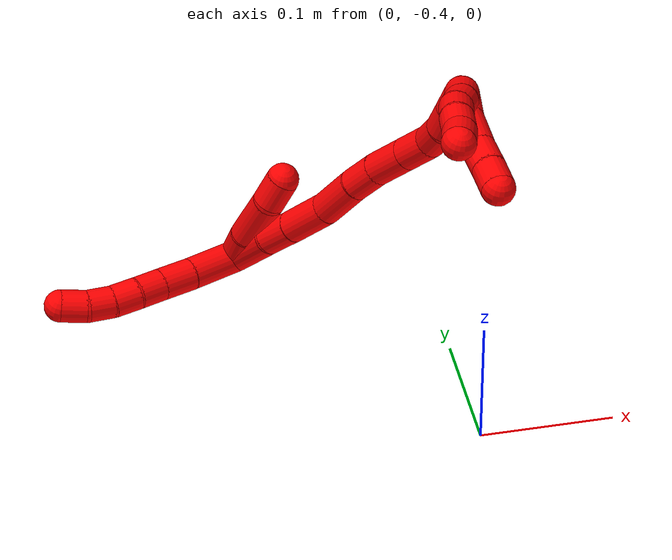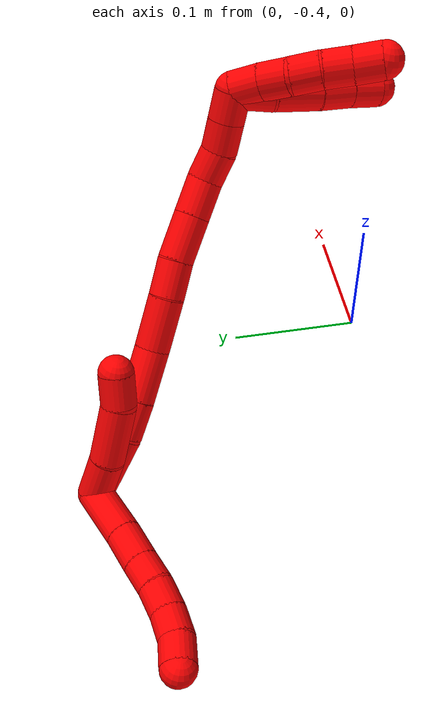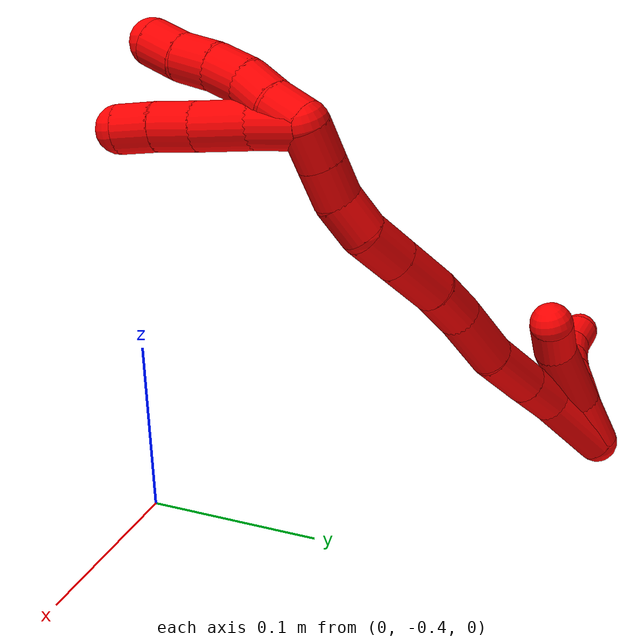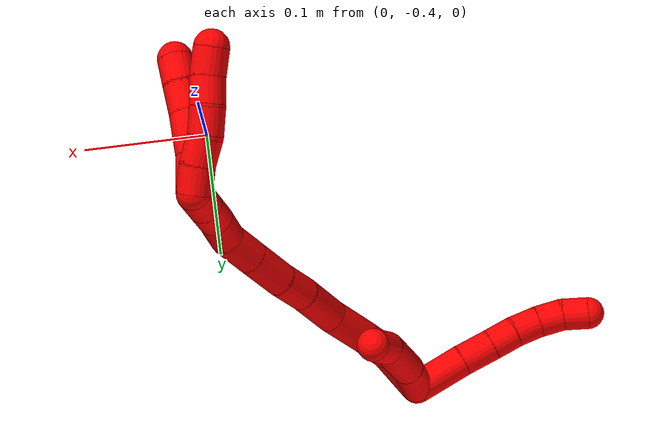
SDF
<sdf version="1.7">
 <world name="default">
  <model name="2">
   <static>0</static>
   <link name="2">
    <collision name="collision-cylinder-e_1_2_8">
     <pose>-0.01979 0.00657 0.000318 -1.52241 -1.24988 1.20432</pose>
     <geometry><cylinder><radius>0.0125</radius><length>0.041709</length></cylinder></geometry>
     <surface>
      <friction><ode><mu>1.16</mu><mu2>1.16</mu2><slip1>0</slip1><slip2>0</slip2></ode></friction>
      <contact><ode><kp>1e+06</kp><kd>1</kd><max_vel>0</max_vel><min_depth>0.001</min_depth></ode></contact>
     </surface>
    </collision>
    <visual name="visual-cylinder-e_1_2_8">
     <pose>-0.01979 0.00657 0.000318 -1.52241 -1.24988 1.20432</pose>
     <geometry><cylinder><radius>0.0125</radius><length>0.041709</length></cylinder></geometry>
     <material><ambient>1 0 0 1</ambient></material>
    </visual>
    <collision name="collision-cylinder-e_2_8_9">
     <pose>-0.052305 0.016653 0.000937 -1.4854 -1.30057 1.21919</pose>
     <geometry><cylinder><radius>0.0125</radius><length>0.026409</length></cylinder></geometry>
     <surface>
      <friction><ode><mu>1.16</mu><mu2>1.16</mu2><slip1>0</slip1><slip2>0</slip2></ode></friction>
      <contact><ode><kp>1e+06</kp><kd>1</kd><max_vel>0</max_vel><min_depth>0.001</min_depth></ode></contact>
     </surface>
    </collision>
    <visual name="visual-cylinder-e_2_8_9">
     <pose>-0.052305 0.016653 0.000937 -1.4854 -1.30057 1.21919</pose>
     <geometry><cylinder><radius>0.0125</radius><length>0.026409</length></cylinder></geometry>
     <material><ambient>1 0 0 1</ambient></material>
    </visual>
    <collision name="collision-cylinder-e_3_9_10">
     <pose>-0.074958 0.023096 0.001368 -1.52618 -1.28349 1.24097</pose>
     <geometry><cylinder><radius>0.0125</radius><length>0.020705</length></cylinder></geometry>
     <surface>
      <friction><ode><mu>1.16</mu><mu2>1.16</mu2><slip1>0</slip1><slip2>0</slip2></ode></friction>
      <contact><ode><kp>1e+06</kp><kd>1</kd><max_vel>0</max_vel><min_depth>0.001</min_depth></ode></contact>
     </surface>
    </collision>
    <visual name="visual-cylinder-e_3_9_10">
     <pose>-0.074958 0.023096 0.001368 -1.52618 -1.28349 1.24097</pose>
     <geometry><cylinder><radius>0.0125</radius><length>0.020705</length></cylinder></geometry>
     <material><ambient>1 0 0 1</ambient></material>
    </visual>
    <collision name="collision-cylinder-e_4_10_11">
     <pose>-0.094997 0.028136 0.002585 -1.09557 -1.34034 0.900712</pose>
     <geometry><cylinder><radius>0.0125</radius><length>0.02077</length></cylinder></geometry>
     <surface>
      <friction><ode><mu>1.16</mu><mu2>1.16</mu2><slip1>0</slip1><slip2>0</slip2></ode></friction>
      <contact><ode><kp>1e+06</kp><kd>1</kd><max_vel>0</max_vel><min_depth>0.001</min_depth></ode></contact>
     </surface>
    </collision>
    <visual name="visual-cylinder-e_4_10_11">
     <pose>-0.094997 0.028136 0.002585 -1.09557 -1.34034 0.900712</pose>
     <geometry><cylinder><radius>0.0125</radius><length>0.02077</length></cylinder></geometry>
     <material><ambient>1 0 0 1</ambient></material>
    </visual>
    <collision name="collision-cylinder-e_5_11_12">
     <pose>-0.115093 0.030878 0.004113 -0.960942 -1.49358 0.899004</pose>
     <geometry><cylinder><radius>0.0125</radius><length>0.020031</length></cylinder></geometry>
     <surface>
      <friction><ode><mu>1.16</mu><mu2>1.16</mu2><slip1>0</slip1><slip2>0</slip2></ode></friction>
      <contact><ode><kp>1e+06</kp><kd>1</kd><max_vel>0</max_vel><min_depth>0.001</min_depth></ode></contact>
     </surface>
    </collision>
    <visual name="visual-cylinder-e_5_11_12">
     <pose>-0.115093 0.030878 0.004113 -0.960942 -1.49358 0.899004</pose>
     <geometry><cylinder><radius>0.0125</radius><length>0.020031</length></cylinder></geometry>
     <material><ambient>1 0 0 1</ambient></material>
    </visual>
    <collision name="collision-cylinder-e_6_12_6">
     <pose>-0.135089 0.029649 0.004919 1.3777 -1.38339 -1.197</pose>
     <geometry><cylinder><radius>0.0125</radius><length>0.020376</length></cylinder></geometry>
     <surface>
      <friction><ode><mu>1.16</mu><mu2>1.16</mu2><slip1>0</slip1><slip2>0</slip2></ode></friction>
      <contact><ode><kp>1e+06</kp><kd>1</kd><max_vel>0</max_vel><min_depth>0.001</min_depth></ode></contact>
     </surface>
    </collision>
    <visual name="visual-cylinder-e_6_12_6">
     <pose>-0.135089 0.029649 0.004919 1.3777 -1.38339 -1.197</pose>
     <geometry><cylinder><radius>0.0125</radius><length>0.020376</length></cylinder></geometry>
     <material><ambient>1 0 0 1</ambient></material>
    </visual>
    <collision name="collision-cylinder-e_1_2_13">
     <pose>0.001088 0.002904 -0.015987 -2.96193 0.066844 -0.710852</pose>
     <geometry><cylinder><radius>0.0125</radius><length>0.032571</length></cylinder></geometry>
     <surface>
      <friction><ode><mu>1.16</mu><mu2>1.16</mu2><slip1>0</slip1><slip2>0</slip2></ode></friction>
      <contact><ode><kp>1e+06</kp><kd>1</kd><max_vel>0</max_vel><min_depth>0.001</min_depth></ode></contact>
     </surface>
    </collision>
    <visual name="visual-cylinder-e_1_2_13">
     <pose>0.001088 0.002904 -0.015987 -2.96193 0.066844 -0.710852</pose>
     <geometry><cylinder><radius>0.0125</radius><length>0.032571</length></cylinder></geometry>
     <material><ambient>1 0 0 1</ambient></material>
    </visual>
    <collision name="collision-cylinder-e_2_13_14">
     <pose>0.006772 0.008418 -0.053226 -3.01936 0.211455 -2.09551</pose>
     <geometry><cylinder><radius>0.0125</radius><length>0.043797</length></cylinder></geometry>
     <surface>
      <friction><ode><mu>1.16</mu><mu2>1.16</mu2><slip1>0</slip1><slip2>0</slip2></ode></friction>
      <contact><ode><kp>1e+06</kp><kd>1</kd><max_vel>0</max_vel><min_depth>0.001</min_depth></ode></contact>
     </surface>
    </collision>
    <visual name="visual-cylinder-e_2_13_14">
     <pose>0.006772 0.008418 -0.053226 -3.01936 0.211455 -2.09551</pose>
     <geometry><cylinder><radius>0.0125</radius><length>0.043797</length></cylinder></geometry>
     <material><ambient>1 0 0 1</ambient></material>
    </visual>
    <collision name="collision-cylinder-e_3_14_5">
     <pose>0.01555 0.009592 -0.085435 3.01128 0.361803 2.45625</pose>
     <geometry><cylinder><radius>0.0125</radius><length>0.023632</length></cylinder></geometry>
     <surface>
      <friction><ode><mu>1.16</mu><mu2>1.16</mu2><slip1>0</slip1><slip2>0</slip2></ode></friction>
      <contact><ode><kp>1e+06</kp><kd>1</kd><max_vel>0</max_vel><min_depth>0.001</min_depth></ode></contact>
     </surface>
    </collision>
    <visual name="visual-cylinder-e_3_14_5">
     <pose>0.01555 0.009592 -0.085435 3.01128 0.361803 2.45625</pose>
     <geometry><cylinder><radius>0.0125</radius><length>0.023632</length></cylinder></geometry>
     <material><ambient>1 0 0 1</ambient></material>
    </visual>
    <collision name="collision-cylinder-e_1_2_15">
     <pose>0.007318 0.009679 -0.020618 -2.70269 0.310896 -1.22495</pose>
     <geometry><cylinder><radius>0.0125</radius><length>0.047847</length></cylinder></geometry>
     <surface>
      <friction><ode><mu>1.16</mu><mu2>1.16</mu2><slip1>0</slip1><slip2>0</slip2></ode></friction>
      <contact><ode><kp>1e+06</kp><kd>1</kd><max_vel>0</max_vel><min_depth>0.001</min_depth></ode></contact>
     </surface>
    </collision>
    <visual name="visual-cylinder-e_1_2_15">
     <pose>0.007318 0.009679 -0.020618 -2.70269 0.310896 -1.22495</pose>
     <geometry><cylinder><radius>0.0125</radius><length>0.047847</length></cylinder></geometry>
     <material><ambient>1 0 0 1</ambient></material>
    </visual>
    <collision name="collision-cylinder-e_2_15_16">
     <pose>0.021 0.023814 -0.052417 -2.76231 0.486323 -1.82451</pose>
     <geometry><cylinder><radius>0.0125</radius><length>0.027231</length></cylinder></geometry>
     <surface>
      <friction><ode><mu>1.16</mu><mu2>1.16</mu2><slip1>0</slip1><slip2>0</slip2></ode></friction>
      <contact><ode><kp>1e+06</kp><kd>1</kd><max_vel>0</max_vel><min_depth>0.001</min_depth></ode></contact>
     </surface>
    </collision>
    <visual name="visual-cylinder-e_2_15_16">
     <pose>0.021 0.023814 -0.052417 -2.76231 0.486323 -1.82451</pose>
     <geometry><cylinder><radius>0.0125</radius><length>0.027231</length></cylinder></geometry>
     <material><ambient>1 0 0 1</ambient></material>
    </visual>
    <collision name="collision-cylinder-e_3_16_17">
     <pose>0.036597 0.033729 -0.079195 -2.80497 0.50956 -1.98543</pose>
     <geometry><cylinder><radius>0.0125</radius><length>0.037857</length></cylinder></geometry>
     <surface>
      <friction><ode><mu>1.16</mu><mu2>1.16</mu2><slip1>0</slip1><slip2>0</slip2></ode></friction>
      <contact><ode><kp>1e+06</kp><kd>1</kd><max_vel>0</max_vel><min_depth>0.001</min_depth></ode></contact>
     </surface>
    </collision>
    <visual name="visual-cylinder-e_3_16_17">
     <pose>0.036597 0.033729 -0.079195 -2.80497 0.50956 -1.98543</pose>
     <geometry><cylinder><radius>0.0125</radius><length>0.037857</length></cylinder></geometry>
     <material><ambient>1 0 0 1</ambient></material>
    </visual>
    <collision name="collision-cylinder-e_4_17_18">
     <pose>0.052661 0.043414 -0.11223 -2.90375 0.363696 -1.98913</pose>
     <geometry><cylinder><radius>0.0125</radius><length>0.0384</length></cylinder></geometry>
     <surface>
      <friction><ode><mu>1.16</mu><mu2>1.16</mu2><slip1>0</slip1><slip2>0</slip2></ode></friction>
      <contact><ode><kp>1e+06</kp><kd>1</kd><max_vel>0</max_vel><min_depth>0.001</min_depth></ode></contact>
     </surface>
    </collision>
    <visual name="visual-cylinder-e_4_17_18">
     <pose>0.052661 0.043414 -0.11223 -2.90375 0.363696 -1.98913</pose>
     <geometry><cylinder><radius>0.0125</radius><length>0.0384</length></cylinder></geometry>
     <material><ambient>1 0 0 1</ambient></material>
    </visual>
    <collision name="collision-cylinder-e_5_18_19">
     <pose>0.06531 0.050598 -0.141006 -2.88653 0.461001 -2.14141</pose>
     <geometry><cylinder><radius>0.0125</radius><length>0.026163</length></cylinder></geometry>
     <surface>
      <friction><ode><mu>1.16</mu><mu2>1.16</mu2><slip1>0</slip1><slip2>0</slip2></ode></friction>
      <contact><ode><kp>1e+06</kp><kd>1</kd><max_vel>0</max_vel><min_depth>0.001</min_depth></ode></contact>
     </surface>
    </collision>
    <visual name="visual-cylinder-e_5_18_19">
     <pose>0.06531 0.050598 -0.141006 -2.88653 0.461001 -2.14141</pose>
     <geometry><cylinder><radius>0.0125</radius><length>0.026163</length></cylinder></geometry>
     <material><ambient>1 0 0 1</ambient></material>
    </visual>
    <collision name="collision-cylinder-e_6_19_20">
     <pose>0.07818 0.058914 -0.165834 -2.76344 0.452124 -1.75365</pose>
     <geometry><cylinder><radius>0.0125</radius><length>0.032278</length></cylinder></geometry>
     <surface>
      <friction><ode><mu>1.16</mu><mu2>1.16</mu2><slip1>0</slip1><slip2>0</slip2></ode></friction>
      <contact><ode><kp>1e+06</kp><kd>1</kd><max_vel>0</max_vel><min_depth>0.001</min_depth></ode></contact>
     </surface>
    </collision>
    <visual name="visual-cylinder-e_6_19_20">
     <pose>0.07818 0.058914 -0.165834 -2.76344 0.452124 -1.75365</pose>
     <geometry><cylinder><radius>0.0125</radius><length>0.032278</length></cylinder></geometry>
     <material><ambient>1 0 0 1</ambient></material>
    </visual>
    <collision name="collision-cylinder-e_7_20_21">
     <pose>0.090955 0.068672 -0.190341 -2.76173 0.449683 -1.74358</pose>
     <geometry><cylinder><radius>0.0125</radius><length>0.02634</length></cylinder></geometry>
     <surface>
      <friction><ode><mu>1.16</mu><mu2>1.16</mu2><slip1>0</slip1><slip2>0</slip2></ode></friction>
      <contact><ode><kp>1e+06</kp><kd>1</kd><max_vel>0</max_vel><min_depth>0.001</min_depth></ode></contact>
     </surface>
    </collision>
    <visual name="visual-cylinder-e_7_20_21">
     <pose>0.090955 0.068672 -0.190341 -2.76173 0.449683 -1.74358</pose>
     <geometry><cylinder><radius>0.0125</radius><length>0.02634</length></cylinder></geometry>
     <material><ambient>1 0 0 1</ambient></material>
    </visual>
    <collision name="collision-cylinder-e_8_21_22">
     <pose>0.098223 0.076633 -0.211747 -2.81121 0.139577 -0.794079</pose>
     <geometry><cylinder><radius>0.0125</radius><length>0.022187</length></cylinder></geometry>
     <surface>
      <friction><ode><mu>1.16</mu><mu2>1.16</mu2><slip1>0</slip1><slip2>0</slip2></ode></friction>
      <contact><ode><kp>1e+06</kp><kd>1</kd><max_vel>0</max_vel><min_depth>0.001</min_depth></ode></contact>
     </surface>
    </collision>
    <visual name="visual-cylinder-e_8_21_22">
     <pose>0.098223 0.076633 -0.211747 -2.81121 0.139577 -0.794079</pose>
     <geometry><cylinder><radius>0.0125</radius><length>0.022187</length></cylinder></geometry>
     <material><ambient>1 0 0 1</ambient></material>
    </visual>
    <collision name="collision-cylinder-e_9_22_23">
     <pose>0.101034 0.081091 -0.232667 -3.05687 0.119405 -1.90795</pose>
     <geometry><cylinder><radius>0.0125</radius><length>0.021284</length></cylinder></geometry>
     <surface>
      <friction><ode><mu>1.16</mu><mu2>1.16</mu2><slip1>0</slip1><slip2>0</slip2></ode></friction>
      <contact><ode><kp>1e+06</kp><kd>1</kd><max_vel>0</max_vel><min_depth>0.001</min_depth></ode></contact>
     </surface>
    </collision>
    <visual name="visual-cylinder-e_9_22_23">
     <pose>0.101034 0.081091 -0.232667 -3.05687 0.119405 -1.90795</pose>
     <geometry><cylinder><radius>0.0125</radius><length>0.021284</length></cylinder></geometry>
     <material><ambient>1 0 0 1</ambient></material>
    </visual>
    <collision name="collision-cylinder-e_10_23_1">
     <pose>0.10347 0.082815 -0.253301 -3.05968 0.114669 -1.90148</pose>
     <geometry><cylinder><radius>0.0125</radius><length>0.020414</length></cylinder></geometry>
     <surface>
      <friction><ode><mu>1.16</mu><mu2>1.16</mu2><slip1>0</slip1><slip2>0</slip2></ode></friction>
      <contact><ode><kp>1e+06</kp><kd>1</kd><max_vel>0</max_vel><min_depth>0.001</min_depth></ode></contact>
     </surface>
    </collision>
    <visual name="visual-cylinder-e_10_23_1">
     <pose>0.10347 0.082815 -0.253301 -3.05968 0.114669 -1.90148</pose>
     <geometry><cylinder><radius>0.0125</radius><length>0.020414</length></cylinder></geometry>
     <material><ambient>1 0 0 1</ambient></material>
    </visual>
    <collision name="collision-cylinder-e_1_1_24">
     <pose>0.100961 0.091516 -0.268359 -2.13227 -0.376497 0.664219</pose>
     <geometry><cylinder><radius>0.0125</radius><length>0.02</length></cylinder></geometry>
     <surface>
      <friction><ode><mu>1.16</mu><mu2>1.16</mu2><slip1>0</slip1><slip2>0</slip2></ode></friction>
      <contact><ode><kp>1e+06</kp><kd>1</kd><max_vel>0</max_vel><min_depth>0.001</min_depth></ode></contact>
     </surface>
    </collision>
    <visual name="visual-cylinder-e_1_1_24">
     <pose>0.100961 0.091516 -0.268359 -2.13227 -0.376497 0.664219</pose>
     <geometry><cylinder><radius>0.0125</radius><length>0.02</length></cylinder></geometry>
     <material><ambient>1 0 0 1</ambient></material>
    </visual>
    <collision name="collision-cylinder-e_2_24_25">
     <pose>0.092135 0.106552 -0.278017 -2.15212 -0.540932 0.949462</pose>
     <geometry><cylinder><radius>0.0125</radius><length>0.02</length></cylinder></geometry>
     <surface>
      <friction><ode><mu>1.16</mu><mu2>1.16</mu2><slip1>0</slip1><slip2>0</slip2></ode></friction>
      <contact><ode><kp>1e+06</kp><kd>1</kd><max_vel>0</max_vel><min_depth>0.001</min_depth></ode></contact>
     </surface>
    </collision>
    <visual name="visual-cylinder-e_2_24_25">
     <pose>0.092135 0.106552 -0.278017 -2.15212 -0.540932 0.949462</pose>
     <geometry><cylinder><radius>0.0125</radius><length>0.02</length></cylinder></geometry>
     <material><ambient>1 0 0 1</ambient></material>
    </visual>
    <collision name="collision-cylinder-e_3_25_26">
     <pose>0.08376 0.122216 -0.28689 -2.02646 -0.328446 0.519502</pose>
     <geometry><cylinder><radius>0.0125</radius><length>0.02</length></cylinder></geometry>
     <surface>
      <friction><ode><mu>1.16</mu><mu2>1.16</mu2><slip1>0</slip1><slip2>0</slip2></ode></friction>
      <contact><ode><kp>1e+06</kp><kd>1</kd><max_vel>0</max_vel><min_depth>0.001</min_depth></ode></contact>
     </surface>
    </collision>
    <visual name="visual-cylinder-e_3_25_26">
     <pose>0.08376 0.122216 -0.28689 -2.02646 -0.328446 0.519502</pose>
     <geometry><cylinder><radius>0.0125</radius><length>0.02</length></cylinder></geometry>
     <material><ambient>1 0 0 1</ambient></material>
    </visual>
    <collision name="collision-cylinder-e_4_26_27">
     <pose>0.078132 0.139891 -0.294226 -1.9035 -0.24262 0.338933</pose>
     <geometry><cylinder><radius>0.0125</radius><length>0.02</length></cylinder></geometry>
     <surface>
      <friction><ode><mu>1.16</mu><mu2>1.16</mu2><slip1>0</slip1><slip2>0</slip2></ode></friction>
      <contact><ode><kp>1e+06</kp><kd>1</kd><max_vel>0</max_vel><min_depth>0.001</min_depth></ode></contact>
     </surface>
    </collision>
    <visual name="visual-cylinder-e_4_26_27">
     <pose>0.078132 0.139891 -0.294226 -1.9035 -0.24262 0.338933</pose>
     <geometry><cylinder><radius>0.0125</radius><length>0.02</length></cylinder></geometry>
     <material><ambient>1 0 0 1</ambient></material>
    </visual>
    <collision name="collision-cylinder-e_5_27_4">
     <pose>0.071975 0.157438 -0.301372 -2.01416 -0.384876 0.597994</pose>
     <geometry><cylinder><radius>0.0125</radius><length>0.02</length></cylinder></geometry>
     <surface>
      <friction><ode><mu>1.16</mu><mu2>1.16</mu2><slip1>0</slip1><slip2>0</slip2></ode></friction>
      <contact><ode><kp>1e+06</kp><kd>1</kd><max_vel>0</max_vel><min_depth>0.001</min_depth></ode></contact>
     </surface>
    </collision>
    <visual name="visual-cylinder-e_5_27_4">
     <pose>0.071975 0.157438 -0.301372 -2.01416 -0.384876 0.597994</pose>
     <geometry><cylinder><radius>0.0125</radius><length>0.02</length></cylinder></geometry>
     <material><ambient>1 0 0 1</ambient></material>
    </visual>
    <collision name="collision-cylinder-e_1_1_28">
     <pose>0.102158 0.09701 -0.264401 -1.64501 -0.182915 0.196931</pose>
     <geometry><cylinder><radius>0.0125</radius><length>0.027259</length></cylinder></geometry>
     <surface>
      <friction><ode><mu>1.16</mu><mu2>1.16</mu2><slip1>0</slip1><slip2>0</slip2></ode></friction>
      <contact><ode><kp>1e+06</kp><kd>1</kd><max_vel>0</max_vel><min_depth>0.001</min_depth></ode></contact>
     </surface>
    </collision>
    <visual name="visual-cylinder-e_1_1_28">
     <pose>0.102158 0.09701 -0.264401 -1.64501 -0.182915 0.196931</pose>
     <geometry><cylinder><radius>0.0125</radius><length>0.027259</length></cylinder></geometry>
     <material><ambient>1 0 0 1</ambient></material>
    </visual>
    <collision name="collision-cylinder-e_2_28_29">
     <pose>0.099047 0.125713 -0.266968 -1.67303 -0.040999 0.045419</pose>
     <geometry><cylinder><radius>0.0125</radius><length>0.030863</length></cylinder></geometry>
     <surface>
      <friction><ode><mu>1.16</mu><mu2>1.16</mu2><slip1>0</slip1><slip2>0</slip2></ode></friction>
      <contact><ode><kp>1e+06</kp><kd>1</kd><max_vel>0</max_vel><min_depth>0.001</min_depth></ode></contact>
     </surface>
    </collision>
    <visual name="visual-cylinder-e_2_28_29">
     <pose>0.099047 0.125713 -0.266968 -1.67303 -0.040999 0.045419</pose>
     <geometry><cylinder><radius>0.0125</radius><length>0.030863</length></cylinder></geometry>
     <material><ambient>1 0 0 1</ambient></material>
    </visual>
    <collision name="collision-cylinder-e_3_29_30">
     <pose>0.098527 0.151864 -0.270135 -1.71705 0.010313 -0.011944</pose>
     <geometry><cylinder><radius>0.0125</radius><length>0.021859</length></cylinder></geometry>
     <surface>
      <friction><ode><mu>1.16</mu><mu2>1.16</mu2><slip1>0</slip1><slip2>0</slip2></ode></friction>
      <contact><ode><kp>1e+06</kp><kd>1</kd><max_vel>0</max_vel><min_depth>0.001</min_depth></ode></contact>
     </surface>
    </collision>
    <visual name="visual-cylinder-e_3_29_30">
     <pose>0.098527 0.151864 -0.270135 -1.71705 0.010313 -0.011944</pose>
     <geometry><cylinder><radius>0.0125</radius><length>0.021859</length></cylinder></geometry>
     <material><ambient>1 0 0 1</ambient></material>
    </visual>
    <collision name="collision-cylinder-e_4_30_3">
     <pose>0.098729 0.172646 -0.272607 -1.65883 0.008944 -0.009768</pose>
     <geometry><cylinder><radius>0.0125</radius><length>0.020018</length></cylinder></geometry>
     <surface>
      <friction><ode><mu>1.16</mu><mu2>1.16</mu2><slip1>0</slip1><slip2>0</slip2></ode></friction>
      <contact><ode><kp>1e+06</kp><kd>1</kd><max_vel>0</max_vel><min_depth>0.001</min_depth></ode></contact>
     </surface>
    </collision>
    <visual name="visual-cylinder-e_4_30_3">
     <pose>0.098729 0.172646 -0.272607 -1.65883 0.008944 -0.009768</pose>
     <geometry><cylinder><radius>0.0125</radius><length>0.020018</length></cylinder></geometry>
     <material><ambient>1 0 0 1</ambient></material>
    </visual>
    <collision name="collision-sphere-3">
     <pose>0.098819 0.182616 -0.273487 0 -0 0</pose>
     <geometry><sphere><radius>0.0125</radius></sphere></geometry>
     <surface>
      <friction><ode><mu>1.16</mu><mu2>1.16</mu2><slip1>0</slip1><slip2>0</slip2></ode></friction>
      <contact><ode><kp>1e+06</kp><kd>1</kd><max_vel>0</max_vel><min_depth>0.001</min_depth></ode></contact>
     </surface>
    </collision>
    <visual name="visual-sphere-3">
     <pose>0.098819 0.182616 -0.273487 0 -0 0</pose>
     <geometry><sphere><radius>0.0125</radius></sphere></geometry>
     <material><ambient>1 0 0 1</ambient></material>
    </visual>
    <collision name="collision-sphere-30">
     <pose>0.09864 0.162676 -0.271727 0 -0 0</pose>
     <geometry><sphere><radius>0.0125</radius></sphere></geometry>
     <surface>
      <friction><ode><mu>1.16</mu><mu2>1.16</mu2><slip1>0</slip1><slip2>0</slip2></ode></friction>
      <contact><ode><kp>1e+06</kp><kd>1</kd><max_vel>0</max_vel><min_depth>0.001</min_depth></ode></contact>
     </surface>
    </collision>
    <visual name="visual-sphere-30">
     <pose>0.09864 0.162676 -0.271727 0 -0 0</pose>
     <geometry><sphere><radius>0.0125</radius></sphere></geometry>
     <material><ambient>1 0 0 1</ambient></material>
    </visual>
    <collision name="collision-sphere-29">
     <pose>0.098414 0.141052 -0.268542 0 -0 0</pose>
     <geometry><sphere><radius>0.0125</radius></sphere></geometry>
     <surface>
      <friction><ode><mu>1.16</mu><mu2>1.16</mu2><slip1>0</slip1><slip2>0</slip2></ode></friction>
      <contact><ode><kp>1e+06</kp><kd>1</kd><max_vel>0</max_vel><min_depth>0.001</min_depth></ode></contact>
     </surface>
    </collision>
    <visual name="visual-sphere-29">
     <pose>0.098414 0.141052 -0.268542 0 -0 0</pose>
     <geometry><sphere><radius>0.0125</radius></sphere></geometry>
     <material><ambient>1 0 0 1</ambient></material>
    </visual>
    <collision name="collision-sphere-28">
     <pose>0.099679 0.110375 -0.265395 0 -0 0</pose>
     <geometry><sphere><radius>0.0125</radius></sphere></geometry>
     <surface>
      <friction><ode><mu>1.16</mu><mu2>1.16</mu2><slip1>0</slip1><slip2>0</slip2></ode></friction>
      <contact><ode><kp>1e+06</kp><kd>1</kd><max_vel>0</max_vel><min_depth>0.001</min_depth></ode></contact>
     </surface>
    </collision>
    <visual name="visual-sphere-28">
     <pose>0.099679 0.110375 -0.265395 0 -0 0</pose>
     <geometry><sphere><radius>0.0125</radius></sphere></geometry>
     <material><ambient>1 0 0 1</ambient></material>
    </visual>
    <collision name="collision-sphere-4">
     <pose>0.06822 0.16581 -0.305348 0 -0 0</pose>
     <geometry><sphere><radius>0.0125</radius></sphere></geometry>
     <surface>
      <friction><ode><mu>1.16</mu><mu2>1.16</mu2><slip1>0</slip1><slip2>0</slip2></ode></friction>
      <contact><ode><kp>1e+06</kp><kd>1</kd><max_vel>0</max_vel><min_depth>0.001</min_depth></ode></contact>
     </surface>
    </collision>
    <visual name="visual-sphere-4">
     <pose>0.06822 0.16581 -0.305348 0 -0 0</pose>
     <geometry><sphere><radius>0.0125</radius></sphere></geometry>
     <material><ambient>1 0 0 1</ambient></material>
    </visual>
    <collision name="collision-sphere-27">
     <pose>0.075729 0.149066 -0.297396 0 -0 0</pose>
     <geometry><sphere><radius>0.0125</radius></sphere></geometry>
     <surface>
      <friction><ode><mu>1.16</mu><mu2>1.16</mu2><slip1>0</slip1><slip2>0</slip2></ode></friction>
      <contact><ode><kp>1e+06</kp><kd>1</kd><max_vel>0</max_vel><min_depth>0.001</min_depth></ode></contact>
     </surface>
    </collision>
    <visual name="visual-sphere-27">
     <pose>0.075729 0.149066 -0.297396 0 -0 0</pose>
     <geometry><sphere><radius>0.0125</radius></sphere></geometry>
     <material><ambient>1 0 0 1</ambient></material>
    </visual>
    <collision name="collision-sphere-26">
     <pose>0.080534 0.130716 -0.291055 0 -0 0</pose>
     <geometry><sphere><radius>0.0125</radius></sphere></geometry>
     <surface>
      <friction><ode><mu>1.16</mu><mu2>1.16</mu2><slip1>0</slip1><slip2>0</slip2></ode></friction>
      <contact><ode><kp>1e+06</kp><kd>1</kd><max_vel>0</max_vel><min_depth>0.001</min_depth></ode></contact>
     </surface>
    </collision>
    <visual name="visual-sphere-26">
     <pose>0.080534 0.130716 -0.291055 0 -0 0</pose>
     <geometry><sphere><radius>0.0125</radius></sphere></geometry>
     <material><ambient>1 0 0 1</ambient></material>
    </visual>
    <collision name="collision-sphere-25">
     <pose>0.086986 0.113717 -0.282725 0 -0 0</pose>
     <geometry><sphere><radius>0.0125</radius></sphere></geometry>
     <surface>
      <friction><ode><mu>1.16</mu><mu2>1.16</mu2><slip1>0</slip1><slip2>0</slip2></ode></friction>
      <contact><ode><kp>1e+06</kp><kd>1</kd><max_vel>0</max_vel><min_depth>0.001</min_depth></ode></contact>
     </surface>
    </collision>
    <visual name="visual-sphere-25">
     <pose>0.086986 0.113717 -0.282725 0 -0 0</pose>
     <geometry><sphere><radius>0.0125</radius></sphere></geometry>
     <material><ambient>1 0 0 1</ambient></material>
    </visual>
    <collision name="collision-sphere-24">
     <pose>0.097284 0.099388 -0.27331 0 -0 0</pose>
     <geometry><sphere><radius>0.0125</radius></sphere></geometry>
     <surface>
      <friction><ode><mu>1.16</mu><mu2>1.16</mu2><slip1>0</slip1><slip2>0</slip2></ode></friction>
      <contact><ode><kp>1e+06</kp><kd>1</kd><max_vel>0</max_vel><min_depth>0.001</min_depth></ode></contact>
     </surface>
    </collision>
    <visual name="visual-sphere-24">
     <pose>0.097284 0.099388 -0.27331 0 -0 0</pose>
     <geometry><sphere><radius>0.0125</radius></sphere></geometry>
     <material><ambient>1 0 0 1</ambient></material>
    </visual>
    <collision name="collision-sphere-1">
     <pose>0.104638 0.083645 -0.263407 0 -0 0</pose>
     <geometry><sphere><radius>0.0125</radius></sphere></geometry>
     <surface>
      <friction><ode><mu>1.16</mu><mu2>1.16</mu2><slip1>0</slip1><slip2>0</slip2></ode></friction>
      <contact><ode><kp>1e+06</kp><kd>1</kd><max_vel>0</max_vel><min_depth>0.001</min_depth></ode></contact>
     </surface>
    </collision>
    <visual name="visual-sphere-1">
     <pose>0.104638 0.083645 -0.263407 0 -0 0</pose>
     <geometry><sphere><radius>0.0125</radius></sphere></geometry>
     <material><ambient>1 0 0 1</ambient></material>
    </visual>
    <collision name="collision-sphere-23">
     <pose>0.102302 0.081985 -0.243195 0 -0 0</pose>
     <geometry><sphere><radius>0.0125</radius></sphere></geometry>
     <surface>
      <friction><ode><mu>1.16</mu><mu2>1.16</mu2><slip1>0</slip1><slip2>0</slip2></ode></friction>
      <contact><ode><kp>1e+06</kp><kd>1</kd><max_vel>0</max_vel><min_depth>0.001</min_depth></ode></contact>
     </surface>
    </collision>
    <visual name="visual-sphere-23">
     <pose>0.102302 0.081985 -0.243195 0 -0 0</pose>
     <geometry><sphere><radius>0.0125</radius></sphere></geometry>
     <material><ambient>1 0 0 1</ambient></material>
    </visual>
    <collision name="collision-sphere-22">
     <pose>0.099767 0.080197 -0.222139 0 -0 0</pose>
     <geometry><sphere><radius>0.0125</radius></sphere></geometry>
     <surface>
      <friction><ode><mu>1.16</mu><mu2>1.16</mu2><slip1>0</slip1><slip2>0</slip2></ode></friction>
      <contact><ode><kp>1e+06</kp><kd>1</kd><max_vel>0</max_vel><min_depth>0.001</min_depth></ode></contact>
     </surface>
    </collision>
    <visual name="visual-sphere-22">
     <pose>0.099767 0.080197 -0.222139 0 -0 0</pose>
     <geometry><sphere><radius>0.0125</radius></sphere></geometry>
     <material><ambient>1 0 0 1</ambient></material>
    </visual>
    <collision name="collision-sphere-21">
     <pose>0.09668 0.07307 -0.201356 0 -0 0</pose>
     <geometry><sphere><radius>0.0125</radius></sphere></geometry>
     <surface>
      <friction><ode><mu>1.16</mu><mu2>1.16</mu2><slip1>0</slip1><slip2>0</slip2></ode></friction>
      <contact><ode><kp>1e+06</kp><kd>1</kd><max_vel>0</max_vel><min_depth>0.001</min_depth></ode></contact>
     </surface>
    </collision>
    <visual name="visual-sphere-21">
     <pose>0.09668 0.07307 -0.201356 0 -0 0</pose>
     <geometry><sphere><radius>0.0125</radius></sphere></geometry>
     <material><ambient>1 0 0 1</ambient></material>
    </visual>
    <collision name="collision-sphere-12">
     <pose>-0.125079 0.031512 0.004555 0 -0 0</pose>
     <geometry><sphere><radius>0.0125</radius></sphere></geometry>
     <surface>
      <friction><ode><mu>1.16</mu><mu2>1.16</mu2><slip1>0</slip1><slip2>0</slip2></ode></friction>
      <contact><ode><kp>1e+06</kp><kd>1</kd><max_vel>0</max_vel><min_depth>0.001</min_depth></ode></contact>
     </surface>
    </collision>
    <visual name="visual-sphere-12">
     <pose>-0.125079 0.031512 0.004555 0 -0 0</pose>
     <geometry><sphere><radius>0.0125</radius></sphere></geometry>
     <material><ambient>1 0 0 1</ambient></material>
    </visual>
    <collision name="collision-sphere-11">
     <pose>-0.105107 0.030245 0.00367 0 -0 0</pose>
     <geometry><sphere><radius>0.0125</radius></sphere></geometry>
     <surface>
      <friction><ode><mu>1.16</mu><mu2>1.16</mu2><slip1>0</slip1><slip2>0</slip2></ode></friction>
      <contact><ode><kp>1e+06</kp><kd>1</kd><max_vel>0</max_vel><min_depth>0.001</min_depth></ode></contact>
     </surface>
    </collision>
    <visual name="visual-sphere-11">
     <pose>-0.105107 0.030245 0.00367 0 -0 0</pose>
     <geometry><sphere><radius>0.0125</radius></sphere></geometry>
     <material><ambient>1 0 0 1</ambient></material>
    </visual>
    <collision name="collision-sphere-10">
     <pose>-0.084887 0.026027 0.001499 0 -0 0</pose>
     <geometry><sphere><radius>0.0125</radius></sphere></geometry>
     <surface>
      <friction><ode><mu>1.16</mu><mu2>1.16</mu2><slip1>0</slip1><slip2>0</slip2></ode></friction>
      <contact><ode><kp>1e+06</kp><kd>1</kd><max_vel>0</max_vel><min_depth>0.001</min_depth></ode></contact>
     </surface>
    </collision>
    <visual name="visual-sphere-10">
     <pose>-0.084887 0.026027 0.001499 0 -0 0</pose>
     <geometry><sphere><radius>0.0125</radius></sphere></geometry>
     <material><ambient>1 0 0 1</ambient></material>
    </visual>
    <collision name="collision-sphere-9">
     <pose>-0.06503 0.020165 0.001238 0 -0 0</pose>
     <geometry><sphere><radius>0.0125</radius></sphere></geometry>
     <surface>
      <friction><ode><mu>1.16</mu><mu2>1.16</mu2><slip1>0</slip1><slip2>0</slip2></ode></friction>
      <contact><ode><kp>1e+06</kp><kd>1</kd><max_vel>0</max_vel><min_depth>0.001</min_depth></ode></contact>
     </surface>
    </collision>
    <visual name="visual-sphere-9">
     <pose>-0.06503 0.020165 0.001238 0 -0 0</pose>
     <geometry><sphere><radius>0.0125</radius></sphere></geometry>
     <material><ambient>1 0 0 1</ambient></material>
    </visual>
    <collision name="collision-sphere-2">
     <geometry><sphere><radius>0.0125</radius></sphere></geometry>
     <surface>
      <friction><ode><mu>1.16</mu><mu2>1.16</mu2><slip1>0</slip1><slip2>0</slip2></ode></friction>
      <contact><ode><kp>1e+06</kp><kd>1</kd><max_vel>0</max_vel><min_depth>0.001</min_depth></ode></contact>
     </surface>
    </collision>
    <visual name="visual-sphere-2">
     <geometry><sphere><radius>0.0125</radius></sphere></geometry>
     <material><ambient>1 0 0 1</ambient></material>
    </visual>
    <collision name="collision-sphere-19">
     <pose>0.071129 0.053554 -0.152342 0 -0 0</pose>
     <geometry><sphere><radius>0.0125</radius></sphere></geometry>
     <surface>
      <friction><ode><mu>1.16</mu><mu2>1.16</mu2><slip1>0</slip1><slip2>0</slip2></ode></friction>
      <contact><ode><kp>1e+06</kp><kd>1</kd><max_vel>0</max_vel><min_depth>0.001</min_depth></ode></contact>
     </surface>
    </collision>
    <visual name="visual-sphere-19">
     <pose>0.071129 0.053554 -0.152342 0 -0 0</pose>
     <geometry><sphere><radius>0.0125</radius></sphere></geometry>
     <material><ambient>1 0 0 1</ambient></material>
    </visual>
    <collision name="collision-sphere-8">
     <pose>-0.03958 0.013141 0.000636 0 -0 0</pose>
     <geometry><sphere><radius>0.0125</radius></sphere></geometry>
     <surface>
      <friction><ode><mu>1.16</mu><mu2>1.16</mu2><slip1>0</slip1><slip2>0</slip2></ode></friction>
      <contact><ode><kp>1e+06</kp><kd>1</kd><max_vel>0</max_vel><min_depth>0.001</min_depth></ode></contact>
     </surface>
    </collision>
    <visual name="visual-sphere-8">
     <pose>-0.03958 0.013141 0.000636 0 -0 0</pose>
     <geometry><sphere><radius>0.0125</radius></sphere></geometry>
     <material><ambient>1 0 0 1</ambient></material>
    </visual>
    <collision name="collision-sphere-6">
     <pose>-0.145098 0.027786 0.005283 0 -0 0</pose>
     <geometry><sphere><radius>0.0125</radius></sphere></geometry>
     <surface>
      <friction><ode><mu>1.16</mu><mu2>1.16</mu2><slip1>0</slip1><slip2>0</slip2></ode></friction>
      <contact><ode><kp>1e+06</kp><kd>1</kd><max_vel>0</max_vel><min_depth>0.001</min_depth></ode></contact>
     </surface>
    </collision>
    <visual name="visual-sphere-6">
     <pose>-0.145098 0.027786 0.005283 0 -0 0</pose>
     <geometry><sphere><radius>0.0125</radius></sphere></geometry>
     <material><ambient>1 0 0 1</ambient></material>
    </visual>
    <collision name="collision-sphere-13">
     <pose>0.002176 0.005807 -0.031975 0 -0 0</pose>
     <geometry><sphere><radius>0.0125</radius></sphere></geometry>
     <surface>
      <friction><ode><mu>1.16</mu><mu2>1.16</mu2><slip1>0</slip1><slip2>0</slip2></ode></friction>
      <contact><ode><kp>1e+06</kp><kd>1</kd><max_vel>0</max_vel><min_depth>0.001</min_depth></ode></contact>
     </surface>
    </collision>
    <visual name="visual-sphere-13">
     <pose>0.002176 0.005807 -0.031975 0 -0 0</pose>
     <geometry><sphere><radius>0.0125</radius></sphere></geometry>
     <material><ambient>1 0 0 1</ambient></material>
    </visual>
    <collision name="collision-sphere-14">
     <pose>0.011368 0.011028 -0.074477 0 -0 0</pose>
     <geometry><sphere><radius>0.0125</radius></sphere></geometry>
     <surface>
      <friction><ode><mu>1.16</mu><mu2>1.16</mu2><slip1>0</slip1><slip2>0</slip2></ode></friction>
      <contact><ode><kp>1e+06</kp><kd>1</kd><max_vel>0</max_vel><min_depth>0.001</min_depth></ode></contact>
     </surface>
    </collision>
    <visual name="visual-sphere-14">
     <pose>0.011368 0.011028 -0.074477 0 -0 0</pose>
     <geometry><sphere><radius>0.0125</radius></sphere></geometry>
     <material><ambient>1 0 0 1</ambient></material>
    </visual>
    <collision name="collision-sphere-5">
     <pose>0.019733 0.008156 -0.096392 0 -0 0</pose>
     <geometry><sphere><radius>0.0125</radius></sphere></geometry>
     <surface>
      <friction><ode><mu>1.16</mu><mu2>1.16</mu2><slip1>0</slip1><slip2>0</slip2></ode></friction>
      <contact><ode><kp>1e+06</kp><kd>1</kd><max_vel>0</max_vel><min_depth>0.001</min_depth></ode></contact>
     </surface>
    </collision>
    <visual name="visual-sphere-5">
     <pose>0.019733 0.008156 -0.096392 0 -0 0</pose>
     <geometry><sphere><radius>0.0125</radius></sphere></geometry>
     <material><ambient>1 0 0 1</ambient></material>
    </visual>
    <collision name="collision-sphere-15">
     <pose>0.014637 0.019357 -0.041235 0 -0 0</pose>
     <geometry><sphere><radius>0.0125</radius></sphere></geometry>
     <surface>
      <friction><ode><mu>1.16</mu><mu2>1.16</mu2><slip1>0</slip1><slip2>0</slip2></ode></friction>
      <contact><ode><kp>1e+06</kp><kd>1</kd><max_vel>0</max_vel><min_depth>0.001</min_depth></ode></contact>
     </surface>
    </collision>
    <visual name="visual-sphere-15">
     <pose>0.014637 0.019357 -0.041235 0 -0 0</pose>
     <geometry><sphere><radius>0.0125</radius></sphere></geometry>
     <material><ambient>1 0 0 1</ambient></material>
    </visual>
    <collision name="collision-sphere-16">
     <pose>0.027364 0.028271 -0.063598 0 -0 0</pose>
     <geometry><sphere><radius>0.0125</radius></sphere></geometry>
     <surface>
      <friction><ode><mu>1.16</mu><mu2>1.16</mu2><slip1>0</slip1><slip2>0</slip2></ode></friction>
      <contact><ode><kp>1e+06</kp><kd>1</kd><max_vel>0</max_vel><min_depth>0.001</min_depth></ode></contact>
     </surface>
    </collision>
    <visual name="visual-sphere-16">
     <pose>0.027364 0.028271 -0.063598 0 -0 0</pose>
     <geometry><sphere><radius>0.0125</radius></sphere></geometry>
     <material><ambient>1 0 0 1</ambient></material>
    </visual>
    <collision name="collision-sphere-17">
     <pose>0.045831 0.039187 -0.094791 0 -0 0</pose>
     <geometry><sphere><radius>0.0125</radius></sphere></geometry>
     <surface>
      <friction><ode><mu>1.16</mu><mu2>1.16</mu2><slip1>0</slip1><slip2>0</slip2></ode></friction>
      <contact><ode><kp>1e+06</kp><kd>1</kd><max_vel>0</max_vel><min_depth>0.001</min_depth></ode></contact>
     </surface>
    </collision>
    <visual name="visual-sphere-17">
     <pose>0.045831 0.039187 -0.094791 0 -0 0</pose>
     <geometry><sphere><radius>0.0125</radius></sphere></geometry>
     <material><ambient>1 0 0 1</ambient></material>
    </visual>
    <collision name="collision-sphere-18">
     <pose>0.05949 0.047642 -0.129669 0 -0 0</pose>
     <geometry><sphere><radius>0.0125</radius></sphere></geometry>
     <surface>
      <friction><ode><mu>1.16</mu><mu2>1.16</mu2><slip1>0</slip1><slip2>0</slip2></ode></friction>
      <contact><ode><kp>1e+06</kp><kd>1</kd><max_vel>0</max_vel><min_depth>0.001</min_depth></ode></contact>
     </surface>
    </collision>
    <visual name="visual-sphere-18">
     <pose>0.05949 0.047642 -0.129669 0 -0 0</pose>
     <geometry><sphere><radius>0.0125</radius></sphere></geometry>
     <material><ambient>1 0 0 1</ambient></material>
    </visual>
    <collision name="collision-sphere-20">
     <pose>0.085231 0.064274 -0.179326 0 -0 0</pose>
     <geometry><sphere><radius>0.0125</radius></sphere></geometry>
     <surface>
      <friction><ode><mu>1.16</mu><mu2>1.16</mu2><slip1>0</slip1><slip2>0</slip2></ode></friction>
      <contact><ode><kp>1e+06</kp><kd>1</kd><max_vel>0</max_vel><min_depth>0.001</min_depth></ode></contact>
     </surface>
    </collision>
    <visual name="visual-sphere-20">
     <pose>0.085231 0.064274 -0.179326 0 -0 0</pose>
     <geometry><sphere><radius>0.0125</radius></sphere></geometry>
     <material><ambient>1 0 0 1</ambient></material>
    </visual>
    <inertial>
     <pose>0.034427 0.058064 -0.131403 0 -0 0</pose>
     <mass>0.75</mass>
     <inertia><ixx>-3e-05</ixx><ixy>0</ixy><ixz>0</ixz><iyy>1.3e-05</iyy><iyz>0</iyz><izz>-6.3e-05</izz></inertia>
    </inertial>
   </link>
   <pose>-0.141115 -0.171926 0.011502 -2.91707 0.116848 0.1014</pose>
  </model>
 </world>
</sdf>
